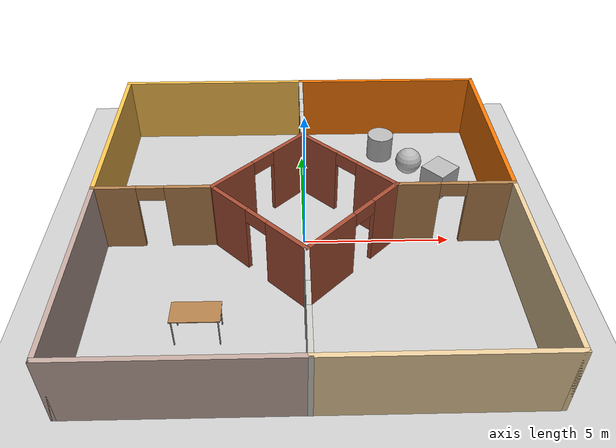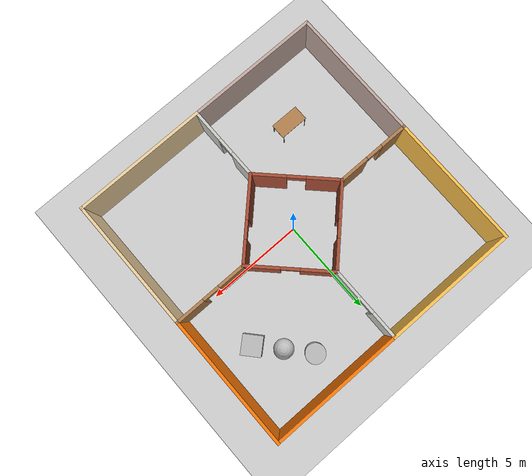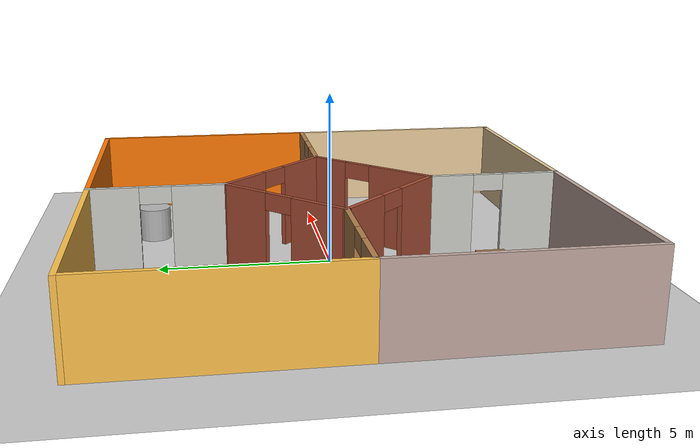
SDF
<sdf version="1.6">
 <world name="default">
  <light name="sun" type="directional">
   <pose>0 0 10 0 -0 0</pose>
   <diffuse>0.8 0.8 0.8 1</diffuse>
   <specular>0.2 0.2 0.2 1</specular>
   <attenuation>
    <range>1000</range>
    <constant>0.9</constant>
    <linear>0.01</linear>
    <quadratic>0.001</quadratic>
   </attenuation>
   <direction>-0.5 0.1 -0.9</direction>
  </light>
  <model name="ground_plane">
   <static>1</static>
   <link name="link">
    <collision name="collision">
     <geometry><plane><normal>0 0 1</normal><size>100 100</size></plane></geometry>
     <surface><friction><ode><mu>100</mu><mu2>50</mu2></ode></friction></surface>
    </collision>
    <visual name="visual">
     <cast_shadows>0</cast_shadows>
     <geometry><plane><normal>0 0 1</normal><size>100 100</size></plane></geometry>
     <material>
      <script><uri>file://media/materials/scripts/gazebo.material</uri><name>Gazebo/Grey</name></script>
     </material>
    </visual>
   </link>
  </model>
  <gravity>0 0 -9.8</gravity>
  <magnetic_field>6e-06 2.3e-05 -4.2e-05</magnetic_field>
  <atmosphere type="adiabatic"/>
  <physics name="default_physics" default="0" type="ode">
   <max_step_size>0.001</max_step_size>
   <real_time_factor>1</real_time_factor>
   <real_time_update_rate>1000</real_time_update_rate>
  </physics>
  <scene><ambient>0.4 0.4 0.4 1</ambient><background>0.7 0.7 0.7 1</background><shadows>1</shadows></scene>
  <audio><device>default</device></audio>
  <spherical_coordinates>
   <surface_model>EARTH_WGS84</surface_model>
   <latitude_deg>0</latitude_deg>
   <longitude_deg>0</longitude_deg>
   <elevation>0</elevation>
   <heading_deg>0</heading_deg>
  </spherical_coordinates>
  <model name="demo">
   <link name="Wall_0">
    <collision name="Wall_0_Collision">
     <geometry><box><size>7 0.15 2.5</size></box></geometry>
     <pose>0 0 1.25 0 -0 0</pose>
    </collision>
    <visual name="Wall_0_Visual">
     <pose>0 0 1.25 0 -0 0</pose>
     <geometry><box><size>7 0.15 2.5</size></box></geometry>
     <material>
      <script><uri>file://media/materials/scripts/gazebo.material</uri><name>Gazebo/Grey</name></script>
      <ambient>1 0.764706 0.305882 1</ambient>
     </material>
     <meta><layer>0</layer></meta>
    </visual>
    <pose>-3.425 6.85 0 0 -0 0</pose>
   </link>
   <link name="Wall_1">
    <pose>0 4.925 0 0 -0 -1.5708</pose>
    <visual name="Wall_1_Visual_0">
     <pose>-1.25178 0 1.25 0 -0 0</pose>
     <geometry><box><size>1.49644 0.15 2.5</size></box></geometry>
     <material>
      <script><uri>file://media/materials/scripts/gazebo.material</uri><name>Gazebo/CeilingTiled</name></script>
      <ambient>1 1 1 1</ambient>
     </material>
     <meta><layer>0</layer></meta>
    </visual>
    <collision name="Wall_1_Collision_0">
     <geometry><box><size>1.49644 0.15 2.5</size></box></geometry>
     <pose>-1.25178 0 1.25 0 -0 0</pose>
    </collision>
    <visual name="Wall_1_Visual_1">
     <pose>1.19822 0 1.25 0 -0 0</pose>
     <geometry><box><size>1.60356 0.15 2.5</size></box></geometry>
     <material>
      <script><uri>file://media/materials/scripts/gazebo.material</uri><name>Gazebo/CeilingTiled</name></script>
      <ambient>1 1 1 1</ambient>
     </material>
     <meta><layer>0</layer></meta>
    </visual>
    <collision name="Wall_1_Collision_1">
     <geometry><box><size>1.60356 0.15 2.5</size></box></geometry>
     <pose>1.19822 0 1.25 0 -0 0</pose>
    </collision>
    <visual name="Wall_1_Visual_2">
     <pose>-0.053563 0 2.25 0 -0 0</pose>
     <geometry><box><size>0.9 0.15 0.5</size></box></geometry>
     <material>
      <script><uri>file://media/materials/scripts/gazebo.material</uri><name>Gazebo/CeilingTiled</name></script>
      <ambient>1 1 1 1</ambient>
     </material>
     <meta><layer>0</layer></meta>
    </visual>
    <collision name="Wall_1_Collision_2">
     <geometry><box><size>0.9 0.15 0.5</size></box></geometry>
     <pose>-0.053563 0 2.25 0 -0 0</pose>
    </collision>
   </link>
   <link name="Wall_10">
    <pose>1.5 1.5 0 0 -0 2.35619</pose>
    <visual name="Wall_10_Visual_0">
     <pose>-1.32129 0 1.25 0 -0 0</pose>
     <geometry><box><size>1.75005 0.15 2.5</size></box></geometry>
     <material>
      <script><uri>file://media/materials/scripts/gazebo.material</uri><name>Gazebo/Bricks</name></script>
      <ambient>1 1 1 1</ambient>
     </material>
     <meta><layer>0</layer></meta>
    </visual>
    <collision name="Wall_10_Collision_0">
     <geometry><box><size>1.75005 0.15 2.5</size></box></geometry>
     <pose>-1.32129 0 1.25 0 -0 0</pose>
    </collision>
    <visual name="Wall_10_Visual_1">
     <pose>1.32503 0 1.25 0 -0 0</pose>
     <geometry><box><size>1.74259 0.15 2.5</size></box></geometry>
     <material>
      <script><uri>file://media/materials/scripts/gazebo.material</uri><name>Gazebo/Bricks</name></script>
      <ambient>1 1 1 1</ambient>
     </material>
     <meta><layer>0</layer></meta>
    </visual>
    <collision name="Wall_10_Collision_1">
     <geometry><box><size>1.74259 0.15 2.5</size></box></geometry>
     <pose>1.32503 0 1.25 0 -0 0</pose>
    </collision>
    <visual name="Wall_10_Visual_2">
     <pose>0.003734 0 2.25 0 -0 0</pose>
     <geometry><box><size>0.9 0.15 0.5</size></box></geometry>
     <material>
      <script><uri>file://media/materials/scripts/gazebo.material</uri><name>Gazebo/Bricks</name></script>
      <ambient>1 1 1 1</ambient>
     </material>
     <meta><layer>0</layer></meta>
    </visual>
    <collision name="Wall_10_Collision_2">
     <geometry><box><size>0.9 0.15 0.5</size></box></geometry>
     <pose>0.003734 0 2.25 0 -0 0</pose>
    </collision>
   </link>
   <link name="Wall_12">
    <collision name="Wall_12_Collision">
     <geometry><box><size>7 0.15 2.5</size></box></geometry>
     <pose>0 0 1.25 0 -0 0</pose>
    </collision>
    <visual name="Wall_12_Visual">
     <pose>0 0 1.25 0 -0 0</pose>
     <geometry><box><size>7 0.15 2.5</size></box></geometry>
     <material>
      <script><uri>file://media/materials/scripts/gazebo.material</uri><name>Gazebo/Grey</name></script>
      <ambient>0.760784 0.662745 0.627451 1</ambient>
     </material>
     <meta><layer>0</layer></meta>
    </visual>
    <pose>-6.85 -3.425 0 0 -0 -1.5708</pose>
   </link>
   <link name="Wall_13">
    <collision name="Wall_13_Collision">
     <geometry><box><size>7 0.15 2.5</size></box></geometry>
     <pose>0 0 1.25 0 -0 0</pose>
    </collision>
    <visual name="Wall_13_Visual">
     <pose>0 0 1.25 0 -0 0</pose>
     <geometry><box><size>7 0.15 2.5</size></box></geometry>
     <material>
      <script><uri>file://media/materials/scripts/gazebo.material</uri><name>Gazebo/Grey</name></script>
      <ambient>0.760784 0.662745 0.627451 1</ambient>
     </material>
     <meta><layer>0</layer></meta>
    </visual>
    <pose>-3.425 -6.85 0 0 -0 0</pose>
   </link>
   <link name="Wall_14">
    <pose>0 -4.925 0 0 -0 1.5708</pose>
    <visual name="Wall_14_Visual_0">
     <pose>-1.13546 0 1.25 0 -0 0</pose>
     <geometry><box><size>1.72909 0.15 2.5</size></box></geometry>
     <material>
      <script><uri>file://media/materials/scripts/gazebo.material</uri><name>Gazebo/CeilingTiled</name></script>
      <ambient>1 1 1 1</ambient>
     </material>
     <meta><layer>0</layer></meta>
    </visual>
    <collision name="Wall_14_Collision_0">
     <geometry><box><size>1.72909 0.15 2.5</size></box></geometry>
     <pose>-1.13546 0 1.25 0 -0 0</pose>
    </collision>
    <visual name="Wall_14_Visual_1">
     <pose>1.31454 0 1.25 0 -0 0</pose>
     <geometry><box><size>1.37091 0.15 2.5</size></box></geometry>
     <material>
      <script><uri>file://media/materials/scripts/gazebo.material</uri><name>Gazebo/CeilingTiled</name></script>
      <ambient>1 1 1 1</ambient>
     </material>
     <meta><layer>0</layer></meta>
    </visual>
    <collision name="Wall_14_Collision_1">
     <geometry><box><size>1.37091 0.15 2.5</size></box></geometry>
     <pose>1.31454 0 1.25 0 -0 0</pose>
    </collision>
    <visual name="Wall_14_Visual_2">
     <pose>0.179089 0 2.25 0 -0 0</pose>
     <geometry><box><size>0.9 0.15 0.5</size></box></geometry>
     <material>
      <script><uri>file://media/materials/scripts/gazebo.material</uri><name>Gazebo/CeilingTiled</name></script>
      <ambient>1 1 1 1</ambient>
     </material>
     <meta><layer>0</layer></meta>
    </visual>
    <collision name="Wall_14_Collision_2">
     <geometry><box><size>0.9 0.15 0.5</size></box></geometry>
     <pose>0.179089 0 2.25 0 -0 0</pose>
    </collision>
   </link>
   <link name="Wall_15">
    <pose>-1.5 -1.5 0 0 -0 2.35619</pose>
    <visual name="Wall_15_Visual_0">
     <pose>-1.32129 0 1.25 0 -0 0</pose>
     <geometry><box><size>1.75005 0.15 2.5</size></box></geometry>
     <material>
      <script><uri>file://media/materials/scripts/gazebo.material</uri><name>Gazebo/Bricks</name></script>
      <ambient>1 1 1 1</ambient>
     </material>
     <meta><layer>0</layer></meta>
    </visual>
    <collision name="Wall_15_Collision_0">
     <geometry><box><size>1.75005 0.15 2.5</size></box></geometry>
     <pose>-1.32129 0 1.25 0 -0 0</pose>
    </collision>
    <visual name="Wall_15_Visual_1">
     <pose>1.32503 0 1.25 0 -0 0</pose>
     <geometry><box><size>1.74259 0.15 2.5</size></box></geometry>
     <material>
      <script><uri>file://media/materials/scripts/gazebo.material</uri><name>Gazebo/Bricks</name></script>
      <ambient>1 1 1 1</ambient>
     </material>
     <meta><layer>0</layer></meta>
    </visual>
    <collision name="Wall_15_Collision_1">
     <geometry><box><size>1.74259 0.15 2.5</size></box></geometry>
     <pose>1.32503 0 1.25 0 -0 0</pose>
    </collision>
    <visual name="Wall_15_Visual_2">
     <pose>0.003734 0 2.25 0 -0 0</pose>
     <geometry><box><size>0.9 0.15 0.5</size></box></geometry>
     <material>
      <script><uri>file://media/materials/scripts/gazebo.material</uri><name>Gazebo/Bricks</name></script>
      <ambient>1 1 1 1</ambient>
     </material>
     <meta><layer>0</layer></meta>
    </visual>
    <collision name="Wall_15_Collision_2">
     <geometry><box><size>0.9 0.15 0.5</size></box></geometry>
     <pose>0.003734 0 2.25 0 -0 0</pose>
    </collision>
   </link>
   <link name="Wall_17">
    <pose>1.5 -1.5 0 0 -0 0.785398</pose>
    <visual name="Wall_17_Visual_0">
     <pose>-1.08818 0 1.25 0 -0 0</pose>
     <geometry><box><size>2.21628 0.15 2.5</size></box></geometry>
     <material>
      <script><uri>file://media/materials/scripts/gazebo.material</uri><name>Gazebo/Bricks</name></script>
      <ambient>1 1 1 1</ambient>
     </material>
     <meta><layer>0</layer></meta>
    </visual>
    <collision name="Wall_17_Collision_0">
     <geometry><box><size>2.21628 0.15 2.5</size></box></geometry>
     <pose>-1.08818 0 1.25 0 -0 0</pose>
    </collision>
    <visual name="Wall_17_Visual_1">
     <pose>1.55814 0 1.25 0 -0 0</pose>
     <geometry><box><size>1.27636 0.15 2.5</size></box></geometry>
     <material>
      <script><uri>file://media/materials/scripts/gazebo.material</uri><name>Gazebo/Bricks</name></script>
      <ambient>1 1 1 1</ambient>
     </material>
     <meta><layer>0</layer></meta>
    </visual>
    <collision name="Wall_17_Collision_1">
     <geometry><box><size>1.27636 0.15 2.5</size></box></geometry>
     <pose>1.55814 0 1.25 0 -0 0</pose>
    </collision>
    <visual name="Wall_17_Visual_2">
     <pose>0.469959 0 2.25 0 -0 0</pose>
     <geometry><box><size>0.9 0.15 0.5</size></box></geometry>
     <material>
      <script><uri>file://media/materials/scripts/gazebo.material</uri><name>Gazebo/Bricks</name></script>
      <ambient>1 1 1 1</ambient>
     </material>
     <meta><layer>0</layer></meta>
    </visual>
    <collision name="Wall_17_Collision_2">
     <geometry><box><size>0.9 0.15 0.5</size></box></geometry>
     <pose>0.469959 0 2.25 0 -0 0</pose>
    </collision>
   </link>
   <link name="Wall_19">
    <collision name="Wall_19_Collision">
     <geometry><box><size>7 0.15 2.5</size></box></geometry>
     <pose>0 0 1.25 0 -0 0</pose>
    </collision>
    <visual name="Wall_19_Visual">
     <pose>0 0 1.25 0 -0 0</pose>
     <geometry><box><size>7 0.15 2.5</size></box></geometry>
     <material>
      <script><uri>file://media/materials/scripts/gazebo.material</uri><name>Gazebo/Grey</name></script>
      <ambient>0.921569 0.807843 0.615686 1</ambient>
     </material>
     <meta><layer>0</layer></meta>
    </visual>
    <pose>3.425 -6.85 0 0 -0 0</pose>
   </link>
   <link name="Wall_20">
    <collision name="Wall_20_Collision">
     <geometry><box><size>7 0.15 2.5</size></box></geometry>
     <pose>0 0 1.25 0 -0 0</pose>
    </collision>
    <visual name="Wall_20_Visual">
     <pose>0 0 1.25 0 -0 0</pose>
     <geometry><box><size>7 0.15 2.5</size></box></geometry>
     <material>
      <script><uri>file://media/materials/scripts/gazebo.material</uri><name>Gazebo/Grey</name></script>
      <ambient>0.921569 0.807843 0.615686 1</ambient>
     </material>
     <meta><layer>0</layer></meta>
    </visual>
    <pose>6.85 -3.425 0 0 -0 1.5708</pose>
   </link>
   <link name="Wall_3">
    <collision name="Wall_3_Collision">
     <geometry><box><size>7 0.15 2.5</size></box></geometry>
     <pose>0 0 1.25 0 -0 0</pose>
    </collision>
    <visual name="Wall_3_Visual">
     <pose>0 0 1.25 0 -0 0</pose>
     <geometry><box><size>7 0.15 2.5</size></box></geometry>
     <material>
      <script><uri>file://media/materials/scripts/gazebo.material</uri><name>Gazebo/Grey</name></script>
      <ambient>1 0.764706 0.305882 1</ambient>
     </material>
     <meta><layer>0</layer></meta>
    </visual>
    <pose>-6.85 3.425 0 0 -0 -1.5708</pose>
   </link>
   <link name="Wall_4">
    <pose>-4.925 -0 0 0 -0 0</pose>
    <visual name="Wall_4_Visual_0">
     <pose>-1.26053 0 1.25 0 -0 0</pose>
     <geometry><box><size>1.47895 0.15 2.5</size></box></geometry>
     <material>
      <script><uri>file://media/materials/scripts/gazebo.material</uri><name>Gazebo/Wood</name></script>
      <ambient>1 1 1 1</ambient>
     </material>
     <meta><layer>0</layer></meta>
    </visual>
    <collision name="Wall_4_Collision_0">
     <geometry><box><size>1.47895 0.15 2.5</size></box></geometry>
     <pose>-1.26053 0 1.25 0 -0 0</pose>
    </collision>
    <visual name="Wall_4_Visual_1">
     <pose>1.18947 0 1.25 0 -0 0</pose>
     <geometry><box><size>1.62105 0.15 2.5</size></box></geometry>
     <material>
      <script><uri>file://media/materials/scripts/gazebo.material</uri><name>Gazebo/Wood</name></script>
      <ambient>1 1 1 1</ambient>
     </material>
     <meta><layer>0</layer></meta>
    </visual>
    <collision name="Wall_4_Collision_1">
     <geometry><box><size>1.62105 0.15 2.5</size></box></geometry>
     <pose>1.18947 0 1.25 0 -0 0</pose>
    </collision>
    <visual name="Wall_4_Visual_2">
     <pose>-0.071053 0 2.25 0 -0 0</pose>
     <geometry><box><size>0.9 0.15 0.5</size></box></geometry>
     <material>
      <script><uri>file://media/materials/scripts/gazebo.material</uri><name>Gazebo/Wood</name></script>
      <ambient>1 1 1 1</ambient>
     </material>
     <meta><layer>0</layer></meta>
    </visual>
    <collision name="Wall_4_Collision_2">
     <geometry><box><size>0.9 0.15 0.5</size></box></geometry>
     <pose>-0.071053 0 2.25 0 -0 0</pose>
    </collision>
   </link>
   <link name="Wall_5">
    <pose>-1.5 1.5 0 0 -0 0.785398</pose>
    <visual name="Wall_5_Visual_0">
     <pose>-1.25514 0 1.25 0 -0 0</pose>
     <geometry><box><size>1.88236 0.15 2.5</size></box></geometry>
     <material>
      <script><uri>file://media/materials/scripts/gazebo.material</uri><name>Gazebo/Bricks</name></script>
      <ambient>1 1 1 1</ambient>
     </material>
     <meta><layer>0</layer></meta>
    </visual>
    <collision name="Wall_5_Collision_0">
     <geometry><box><size>1.88236 0.15 2.5</size></box></geometry>
     <pose>-1.25514 0 1.25 0 -0 0</pose>
    </collision>
    <visual name="Wall_5_Visual_1">
     <pose>1.39118 0 1.25 0 -0 0</pose>
     <geometry><box><size>1.61028 0.15 2.5</size></box></geometry>
     <material>
      <script><uri>file://media/materials/scripts/gazebo.material</uri><name>Gazebo/Bricks</name></script>
      <ambient>1 1 1 1</ambient>
     </material>
     <meta><layer>0</layer></meta>
    </visual>
    <collision name="Wall_5_Collision_1">
     <geometry><box><size>1.61028 0.15 2.5</size></box></geometry>
     <pose>1.39118 0 1.25 0 -0 0</pose>
    </collision>
    <visual name="Wall_5_Visual_2">
     <pose>0.136041 0 2.25 0 -0 0</pose>
     <geometry><box><size>0.9 0.15 0.5</size></box></geometry>
     <material>
      <script><uri>file://media/materials/scripts/gazebo.material</uri><name>Gazebo/Bricks</name></script>
      <ambient>1 1 1 1</ambient>
     </material>
     <meta><layer>0</layer></meta>
    </visual>
    <collision name="Wall_5_Collision_2">
     <geometry><box><size>0.9 0.15 0.5</size></box></geometry>
     <pose>0.136041 0 2.25 0 -0 0</pose>
    </collision>
   </link>
   <link name="Wall_7">
    <collision name="Wall_7_Collision">
     <geometry><box><size>7 0.15 2.5</size></box></geometry>
     <pose>0 0 1.25 0 -0 0</pose>
    </collision>
    <visual name="Wall_7_Visual">
     <pose>0 0 1.25 0 -0 0</pose>
     <geometry><box><size>7 0.15 2.5</size></box></geometry>
     <material>
      <script><uri>file://media/materials/scripts/gazebo.material</uri><name>Gazebo/Grey</name></script>
      <ambient>0.996078 0.47451 0.0196078 1</ambient>
     </material>
     <meta><layer>0</layer></meta>
    </visual>
    <pose>3.425 6.85 0 0 -0 0</pose>
   </link>
   <link name="Wall_8">
    <collision name="Wall_8_Collision">
     <geometry><box><size>7 0.15 2.5</size></box></geometry>
     <pose>0 0 1.25 0 -0 0</pose>
    </collision>
    <visual name="Wall_8_Visual">
     <pose>0 0 1.25 0 -0 0</pose>
     <geometry><box><size>7 0.15 2.5</size></box></geometry>
     <material>
      <script><uri>file://media/materials/scripts/gazebo.material</uri><name>Gazebo/Grey</name></script>
      <ambient>0.996078 0.47451 0.0196078 1</ambient>
     </material>
     <meta><layer>0</layer></meta>
    </visual>
    <pose>6.85 3.425 0 0 -0 -1.5708</pose>
   </link>
   <link name="Wall_9">
    <pose>4.925 -0 0 0 -0 3.14159</pose>
    <visual name="Wall_9_Visual_0">
     <pose>-1.20542 0 1.25 0 -0 0</pose>
     <geometry><box><size>1.58917 0.15 2.5</size></box></geometry>
     <material>
      <script><uri>file://media/materials/scripts/gazebo.material</uri><name>Gazebo/Wood</name></script>
      <ambient>1 1 1 1</ambient>
     </material>
     <meta><layer>0</layer></meta>
    </visual>
    <collision name="Wall_9_Collision_0">
     <geometry><box><size>1.58917 0.15 2.5</size></box></geometry>
     <pose>-1.20542 0 1.25 0 -0 0</pose>
    </collision>
    <visual name="Wall_9_Visual_1">
     <pose>1.24458 0 1.25 0 -0 0</pose>
     <geometry><box><size>1.51083 0.15 2.5</size></box></geometry>
     <material>
      <script><uri>file://media/materials/scripts/gazebo.material</uri><name>Gazebo/Wood</name></script>
      <ambient>1 1 1 1</ambient>
     </material>
     <meta><layer>0</layer></meta>
    </visual>
    <collision name="Wall_9_Collision_1">
     <geometry><box><size>1.51083 0.15 2.5</size></box></geometry>
     <pose>1.24458 0 1.25 0 -0 0</pose>
    </collision>
    <visual name="Wall_9_Visual_2">
     <pose>0.039168 0 2.25 0 -0 0</pose>
     <geometry><box><size>0.9 0.15 0.5</size></box></geometry>
     <material>
      <script><uri>file://media/materials/scripts/gazebo.material</uri><name>Gazebo/Wood</name></script>
      <ambient>1 1 1 1</ambient>
     </material>
     <meta><layer>0</layer></meta>
    </visual>
    <collision name="Wall_9_Collision_2">
     <geometry><box><size>0.9 0.15 0.5</size></box></geometry>
     <pose>0.039168 0 2.25 0 -0 0</pose>
    </collision>
   </link>
   <static>1</static>
  </model>
  <model name="table">
   <static>1</static>
   <link name="link">
    <collision name="surface">
     <pose>0 0 1 0 -0 0</pose>
     <geometry><box><size>1.5 0.8 0.03</size></box></geometry>
     <surface><friction><ode><mu>0.6</mu><mu2>0.6</mu2></ode></friction></surface>
    </collision>
    <visual name="visual1">
     <pose>0 0 1 0 -0 0</pose>
     <geometry><box><size>1.5 0.8 0.03</size></box></geometry>
     <material>
      <script><uri>file://media/materials/scripts/gazebo.material</uri><name>Gazebo/Wood</name></script>
     </material>
    </visual>
    <collision name="front_left_leg">
     <pose>0.68 0.38 0.5 0 -0 0</pose>
     <geometry><cylinder><radius>0.02</radius><length>1</length></cylinder></geometry>
    </collision>
    <visual name="front_left_leg">
     <pose>0.68 0.38 0.5 0 -0 0</pose>
     <geometry><cylinder><radius>0.02</radius><length>1</length></cylinder></geometry>
     <material>
      <script><uri>file://media/materials/scripts/gazebo.material</uri><name>Gazebo/Grey</name></script>
     </material>
    </visual>
    <collision name="front_right_leg">
     <pose>0.68 -0.38 0.5 0 -0 0</pose>
     <geometry><cylinder><radius>0.02</radius><length>1</length></cylinder></geometry>
    </collision>
    <visual name="front_right_leg">
     <pose>0.68 -0.38 0.5 0 -0 0</pose>
     <geometry><cylinder><radius>0.02</radius><length>1</length></cylinder></geometry>
     <material>
      <script><uri>file://media/materials/scripts/gazebo.material</uri><name>Gazebo/Grey</name></script>
     </material>
    </visual>
    <collision name="back_right_leg">
     <pose>-0.68 -0.38 0.5 0 -0 0</pose>
     <geometry><cylinder><radius>0.02</radius><length>1</length></cylinder></geometry>
    </collision>
    <visual name="back_right_leg">
     <pose>-0.68 -0.38 0.5 0 -0 0</pose>
     <geometry><cylinder><radius>0.02</radius><length>1</length></cylinder></geometry>
     <material>
      <script><uri>file://media/materials/scripts/gazebo.material</uri><name>Gazebo/Grey</name></script>
     </material>
    </visual>
    <collision name="back_left_leg">
     <pose>-0.68 0.38 0.5 0 -0 0</pose>
     <geometry><cylinder><radius>0.02</radius><length>1</length></cylinder></geometry>
    </collision>
    <visual name="back_left_leg">
     <pose>-0.68 0.38 0.5 0 -0 0</pose>
     <geometry><cylinder><radius>0.02</radius><length>1</length></cylinder></geometry>
     <material>
      <script><uri>file://media/materials/scripts/gazebo.material</uri><name>Gazebo/Grey</name></script>
     </material>
    </visual>
   </link>
   <pose>-3.26928 -4.04537 0 0 -0 0</pose>
  </model>
  <model name="textured_shapes">
   <pose>4.14576 4.06136 0.5 0 -0 0.729374</pose>
   <link name="box">
    <pose>0 -1.5 0 0 -0 0</pose>
    <collision name="collision"><geometry><box><size>1 1 1</size></box></geometry></collision>
    <visual name="visual">
     <geometry><box><size>1 1 1</size></box></geometry>
     <material>
      <script>
       <uri>model://textured_shapes/materials/scripts</uri>
       <uri>model://textured_shapes/materials/textures</uri>
       <name>TexturedShape/Squares</name>
      </script>
     </material>
    </visual>
    <inertial>
     <inertia><ixx>1</ixx><ixy>0</ixy><ixz>0</ixz><iyy>1</iyy><iyz>0</iyz><izz>1</izz></inertia>
     <mass>1</mass>
    </inertial>
   </link>
   <link name="sphere">
    <collision name="collision"><geometry><sphere><radius>0.5</radius></sphere></geometry></collision>
    <visual name="visual">
     <geometry><sphere><radius>0.5</radius></sphere></geometry>
     <material>
      <script>
       <uri>model://textured_shapes/materials/scripts</uri>
       <uri>model://textured_shapes/materials/textures</uri>
       <name>TexturedShape/Squares</name>
      </script>
     </material>
    </visual>
    <inertial>
     <inertia><ixx>1</ixx><ixy>0</ixy><ixz>0</ixz><iyy>1</iyy><iyz>0</iyz><izz>1</izz></inertia>
     <mass>1</mass>
    </inertial>
   </link>
   <link name="cylinder">
    <pose>0 1.5 0 0 -0 0</pose>
    <collision name="collision">
     <geometry><cylinder><radius>0.5</radius><length>1</length></cylinder></geometry>
    </collision>
    <visual name="visual">
     <geometry><cylinder><radius>0.5</radius><length>1</length></cylinder></geometry>
     <material>
      <script>
       <uri>model://textured_shapes/materials/scripts</uri>
       <uri>model://textured_shapes/materials/textures</uri>
       <name>TexturedShape/Squares</name>
      </script>
     </material>
    </visual>
    <inertial>
     <inertia><ixx>1</ixx><ixy>0</ixy><ixz>0</ixz><iyy>1</iyy><iyz>0</iyz><izz>1</izz></inertia>
     <mass>1</mass>
    </inertial>
   </link>
  </model>
 </world>
</sdf>
